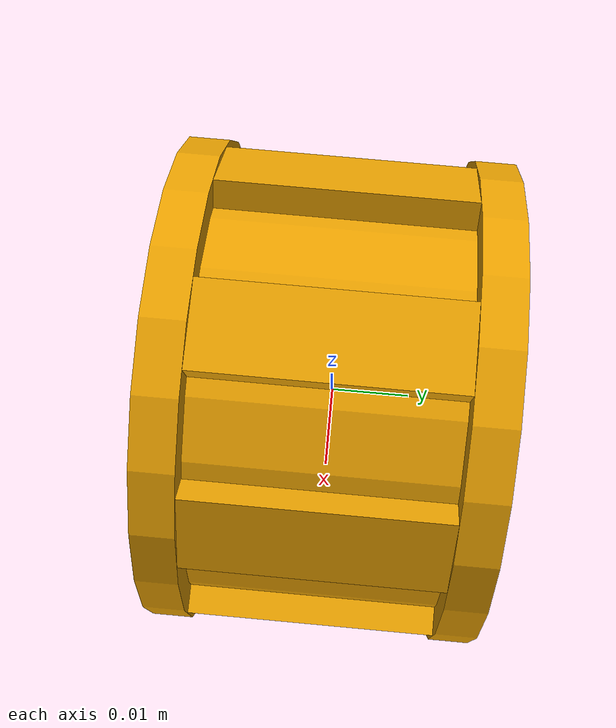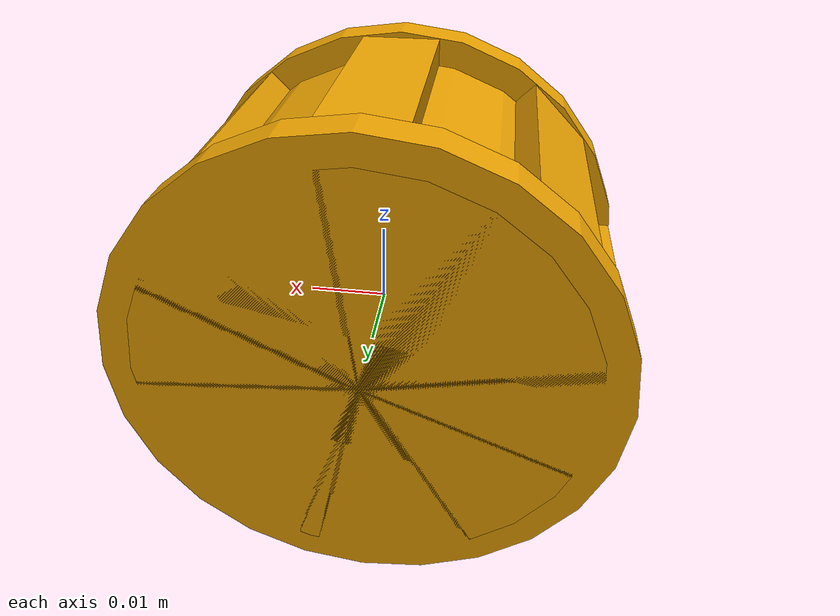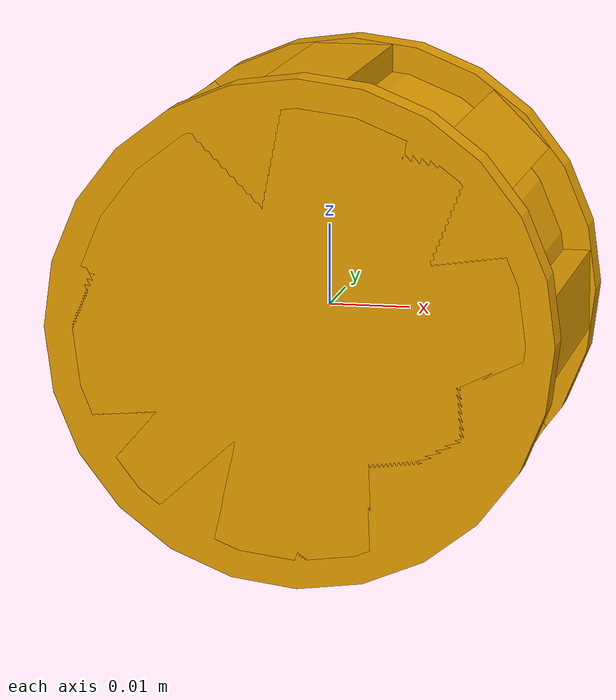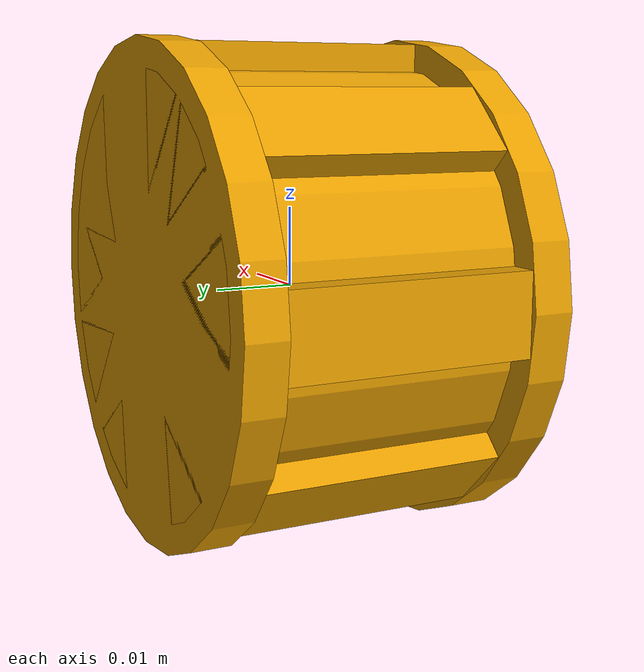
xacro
<?xml version="1.0"?>
<robot name="track">

   <link name="wheel">

    <!-- * * * Inertial Definitions * * * -->
    <inertial>
      <mass value="0.012"/>
      <origin xyz="0 0 0" rpy=" 0 0 0"/>
      <inertia
          ixx="1.0" ixy="0" ixz="0"
          iyy="1.0" iyz="0"
          izz="1.0"
      />
    </inertial>
    <!-- * * * Inertial Definitions end * * * -->

    <!-- * * * Visual Definitions * * * -->
    <visual name='ins'>
      <geometry>
        <cylinder length="0.04" radius="0.0275" />
      </geometry>
      <origin rpy="1.57075 0 0" xyz="0 0 0" />
    </visual>

    <visual name='krom_1'>
      <geometry>
        <cylinder length="0.005" radius="0.031" />
      </geometry>
      <origin rpy="1.57075 0 0" xyz="0 0.0175 0" />
    </visual>

    <visual name='krom_2'>
      <geometry>
        <cylinder length="0.005" radius="0.031" />
      </geometry>
      <origin rpy="1.57075 0 0" xyz="0 -0.0175 0" />
    </visual>

    <visual name='tr_1'>
      <geometry>
        <box size="0.01 0.03 0.0035"/>
      </geometry>
      <origin rpy="0 0 0" xyz="0 0 0.0285" />
    </visual>

    <visual name='tr_2'>
      <geometry>
        <box size="0.01 0.03 0.0035"/>
      </geometry>
      <origin rpy="0 0 0" xyz="0 0 -0.0285" />
    </visual>

  	<visual name='tr_3'>
      <geometry>
        <box size="0.01 0.03 0.0035"/>
      </geometry>
      <origin rpy="0 1.57075 0" xyz="0.0285 0 0" />
    </visual>

    <visual name='tr_4'>
      <geometry>
        <box size="0.01 0.03 0.0035"/>
      </geometry>
      <origin rpy="0 1.57075 0" xyz="-0.0285 0 0" />
    </visual>

    <visual name='tr_5'>
      <geometry>
        <box size="0.01 0.03 0.0035"/>
      </geometry>
      <origin rpy="0 -0.785398 0" xyz="-0.0201525 0 0.0201525" />
    </visual>

    <visual name='tr_6'>
      <geometry>
        <box size="0.01 0.03 0.0035"/>
      </geometry>
      <origin rpy="0 -0.785398 0" xyz="0.0201525 0 -0.0201525" />
    </visual>

  	<visual name='tr_7'>
      <geometry>
        <box size="0.01 0.03 0.0035"/>
      </geometry>
      <origin rpy="0 0.785398 0" xyz="0.0201525 0 0.0201525" />
    </visual>

    <visual name='tr_8'>
      <geometry>
        <box size="0.01 0.03 0.0035"/>
      </geometry>
      <origin rpy="0 0.785398 0" xyz="-0.0201525 0 -0.0201525" />
    </visual>
    <!-- * * * Visual Definitions end * * * -->

    <!-- * * * Collision Definitions * * * -->
    <collision name='coll_ins'>
      <geometry>
        <cylinder length="0.04" radius="0.0275" />
      </geometry>
      <origin rpy="1.57075 0 0" xyz="0 0 0" />
    </collision>

    <collision name='coll_krom_1'>
      <geometry>
        <cylinder length="0.005" radius="0.031" />
      </geometry>
      <origin rpy="1.57075 0 0" xyz="0 0.0175 0" />
    </collision>

    <collision name='coll_krom_2'>
      <geometry>
        <cylinder length="0.005" radius="0.031" />
      </geometry>
      <origin rpy="1.57075 0 0" xyz="0 -0.0175 0" />
    </collision>

    <collision name='coll_tr_1'>
      <geometry>
        <box size="0.01 0.03 0.0035"/>
      </geometry>
      <origin rpy="0 0 0" xyz="0 0 0.0285" />
    </collision>

    <collision name='coll_tr_2'>
      <geometry>
        <box size="0.01 0.03 0.0035"/>
      </geometry>
      <origin rpy="0 0 0" xyz="0 0 -0.0285" />
    </collision>

  	<collision name='coll_tr_3'>
      <geometry>
        <box size="0.01 0.03 0.0035"/>
      </geometry>
      <origin rpy="0 1.57075 0" xyz="0.0285 0 0" />
    </collision>

    <collision name='coll_tr_4'>
      <geometry>
        <box size="0.01 0.03 0.0035"/>
      </geometry>
      <origin rpy="0 1.57075 0" xyz="-0.0285 0 0" />
    </collision>

    <collision name='coll_tr_5'>
      <geometry>
        <box size="0.01 0.03 0.0035"/>
      </geometry>
      <origin rpy="0 -0.785398 0" xyz="-0.0201525 0 0.0201525" />
    </collision>

    <collision name='coll_tr_6'>
      <geometry>
        <box size="0.01 0.03 0.0035"/>
      </geometry>
      <origin rpy="0 -0.785398 0" xyz="0.0201525 0 -0.0201525" />
    </collision>

  	<collision name='coll_tr_7'>
      <geometry>
        <box size="0.01 0.03 0.0035"/>
      </geometry>
      <origin rpy="0 0.785398 0" xyz="0.0201525 0 0.0201525" />
    </collision>

    <collision name='coll_tr_8'>
      <geometry>
        <box size="0.01 0.03 0.0035"/>
      </geometry>
      <origin rpy="0 0.785398 0" xyz="-0.0201525 0 -0.0201525" />
    </collision>
    <!-- * * * Collision Definitions end * * * -->

  </link>

</robot>
